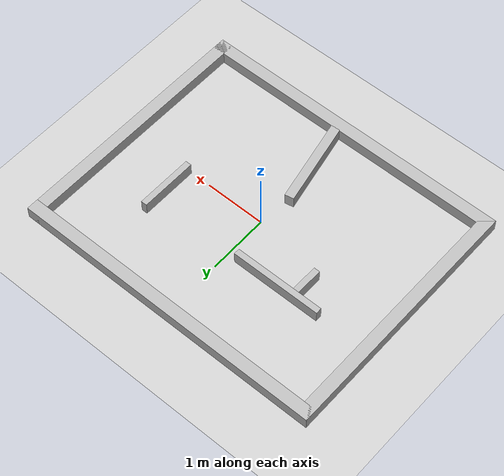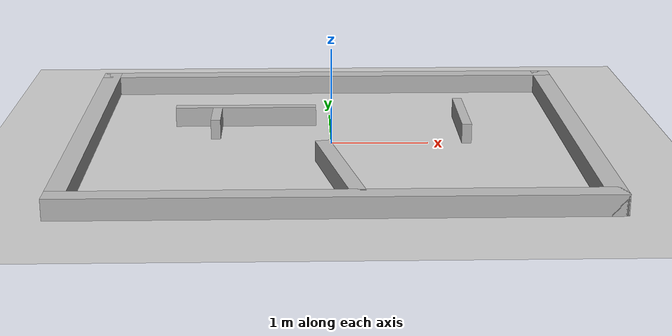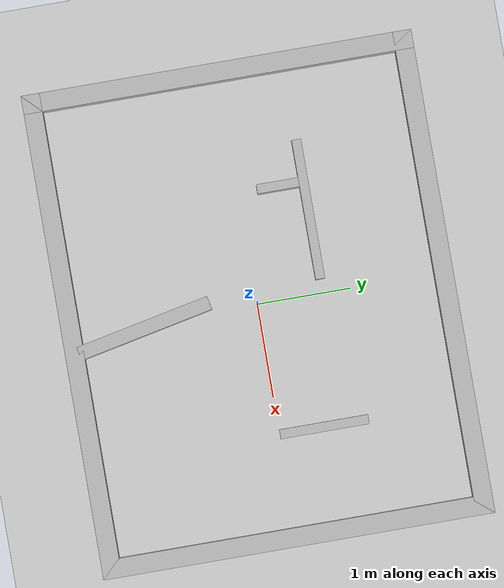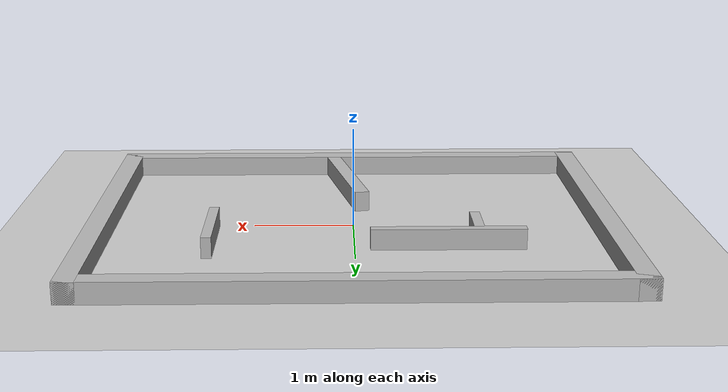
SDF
<?xml version="1.0" ?>
<sdf version="1.4">

	<world name="default">

		<scene>

			<ambient>0.4 0.4 0.4 1</ambient>

			<background>0.7 0.7 0.7 1</background>

			<shadows>true</shadows>

		</scene>

		<!-- A global light source -->

		<include>

			<uri>model://sun</uri>

		</include>

		<!-- A ground plane -->

		<include>

			<uri>model://ground_plane</uri>

		</include>

		<physics type="ode">

			<real_time_update_rate>1000.0</real_time_update_rate>

			<max_step_size>0.001</max_step_size>

			<real_time_factor>1</real_time_factor>

			<ode>

				<solver>

					<type>quick</type>

					<iters>150</iters>

					<precon_iters>0</precon_iters>

					<sor>1.400000</sor>

					<use_dynamic_moi_rescaling>1</use_dynamic_moi_rescaling>

				</solver>

				<constraints>

					<cfm>0.00001</cfm>

					<erp>0.2</erp>

					<contact_max_correcting_vel>2000.000000</contact_max_correcting_vel>

					<contact_surface_layer>0.01000</contact_surface_layer>

				</constraints>

			</ode>

		</physics>

		<model name="rect-0-back">
			<pose>0.0 2.0 0.0 0.0 0.0 0.0 </pose>
			<link name="link-rect-0-back">
				<collision name="collision-rect-0-back">
					<geometry>
						<box>
							<size>5.199999999999999 0.2 0.4 </size>
						</box>
					</geometry>
				</collision>
				<visual name="visual-rect-0-back">
					<geometry>
						<box>
							<size>5.199999999999999 0.2 0.4 </size>
						</box>
					</geometry>
				</visual>
			</link>
		</model>
		<model name="rect-0-front">
			<pose>0.0 -2.0 0.0 0.0 0.0 0.0 </pose>
			<link name="link-rect-0-front">
				<collision name="collision-rect-0-front">
					<geometry>
						<box>
							<size>5.199999999999999 0.2 0.4 </size>
						</box>
					</geometry>
				</collision>
				<visual name="visual-rect-0-front">
					<geometry>
						<box>
							<size>5.199999999999999 0.2 0.4 </size>
						</box>
					</geometry>
				</visual>
			</link>
		</model>
		<model name="rect-0-left">
			<pose>-2.5 0.0 0.0 0.0 0.0 1.5707963267948966 </pose>
			<link name="link-rect-0-left">
				<collision name="collision-rect-0-left">
					<geometry>
						<box>
							<size>4.199999999999999 0.2 0.4 </size>
						</box>
					</geometry>
				</collision>
				<visual name="visual-rect-0-left">
					<geometry>
						<box>
							<size>4.199999999999999 0.2 0.4 </size>
						</box>
					</geometry>
				</visual>
			</link>
		</model>
		<model name="rect-0-right">
			<pose>2.5 0.0 0.0 0.0 0.0 1.5707963267948966 </pose>
			<link name="link-rect-0-right">
				<collision name="collision-rect-0-right">
					<geometry>
						<box>
							<size>4.199999999999999 0.2 0.4 </size>
						</box>
					</geometry>
				</collision>
				<visual name="visual-rect-0-right">
					<geometry>
						<box>
							<size>4.199999999999999 0.2 0.4 </size>
						</box>
					</geometry>
				</visual>
			</link>
		</model>
		<model name="line-0">
			<pose>0.04999999999999982 -1.225 0.0 0.0 0.0 1.7748143063874453 </pose>
			<link name="link-line-0">
				<collision name="collision-line-0">
					<geometry>
						<box>
							<size>1.480709289496085 0.15 0.4 </size>
						</box>
					</geometry>
				</collision>
				<visual name="visual-line-0">
					<geometry>
						<box>
							<size>1.480709289496085 0.15 0.4 </size>
						</box>
					</geometry>
				</visual>
			</link>
		</model>
		<model name="line-1">
			<pose>-1.2 0.4249999999999998 0.0 0.0 0.0 1.5707963267948966 </pose>
			<link name="link-line-1">
				<collision name="collision-line-1">
					<geometry>
						<box>
							<size>0.44999999999999973 0.1 0.4 </size>
						</box>
					</geometry>
				</collision>
				<visual name="visual-line-1">
					<geometry>
						<box>
							<size>0.44999999999999973 0.1 0.4 </size>
						</box>
					</geometry>
				</visual>
			</link>
		</model>
		<model name="line-2">
			<pose>-0.8999999999999999 0.7000000000000002 0.0 0.0 0.0 0.0 </pose>
			<link name="link-line-2">
				<collision name="collision-line-2">
					<geometry>
						<box>
							<size>1.5 0.1 0.4 </size>
						</box>
					</geometry>
				</collision>
				<visual name="visual-line-2">
					<geometry>
						<box>
							<size>1.5 0.1 0.4 </size>
						</box>
					</geometry>
				</visual>
			</link>
		</model>
		<model name="line-3">
			<pose>1.4000000000000004 0.4750000000000001 0.0 0.0 0.0 1.5707963267948966 </pose>
			<link name="link-line-3">
				<collision name="collision-line-3">
					<geometry>
						<box>
							<size>0.9500000000000002 0.1 0.4 </size>
						</box>
					</geometry>
				</collision>
				<visual name="visual-line-3">
					<geometry>
						<box>
							<size>0.9500000000000002 0.1 0.4 </size>
						</box>
					</geometry>
				</visual>
			</link>
		</model>
	</world>

</sdf>
